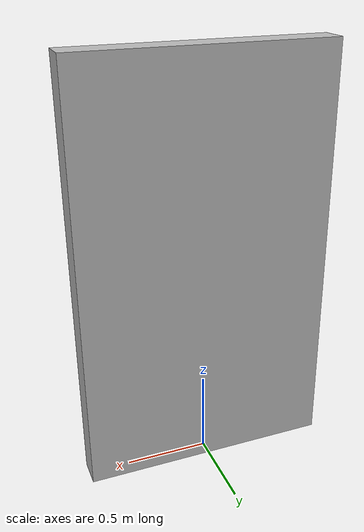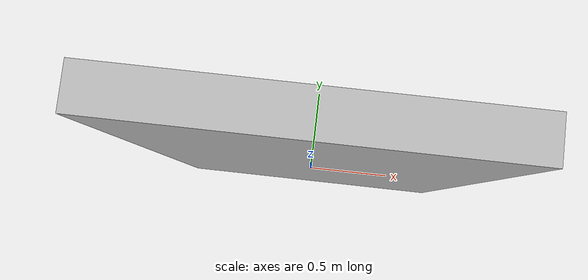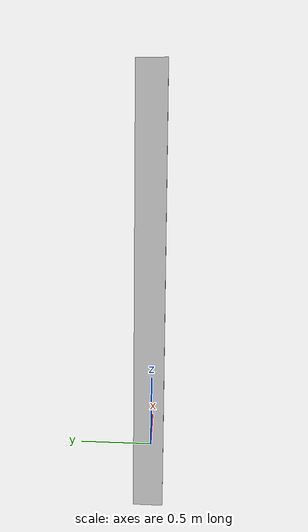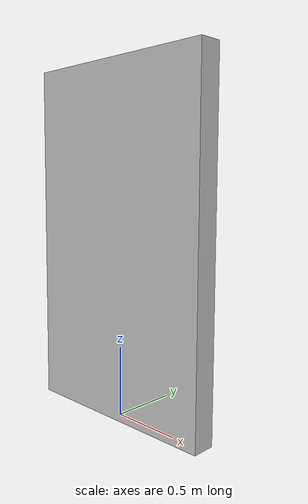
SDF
<?xml version='1.0'?>
<sdf version='1.6'>
  <model name='door'>
    <link name='link_0'>
         <visual name='visual'>
        <pose frame=''>0 0 1.25 0 -0 0</pose>
        <geometry>
          <box>
            <size>1.5 0.17 2.5</size>
          </box>
        </geometry>
          	<material>
          <script>
            <uri>model://door/materials/scripts</uri>
            <uri>model://door/materials/textures</uri>
            <name>door</name>
          </script>
        </material>
        <cast_shadows>1</cast_shadows>
        <transparency>0</transparency>
      </visual>
      <collision name='collision'>
        <laser_retro>0</laser_retro>
        <max_contacts>10</max_contacts>
        <pose frame=''>0 0 1.25 0 -0 0</pose>
        <geometry>
          <box>
            <size>1.5 0.17 2.5</size>
          </box>
        </geometry>

      </collision>
    </link>
    <static>1</static>
    <allow_auto_disable>1</allow_auto_disable>
  </model>
</sdf>
